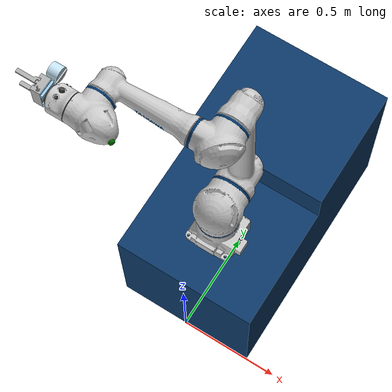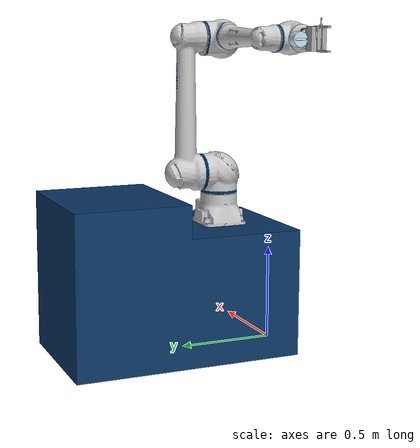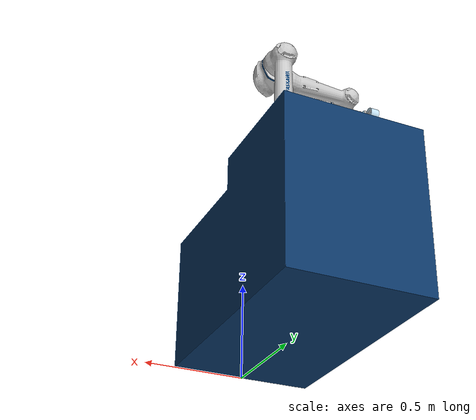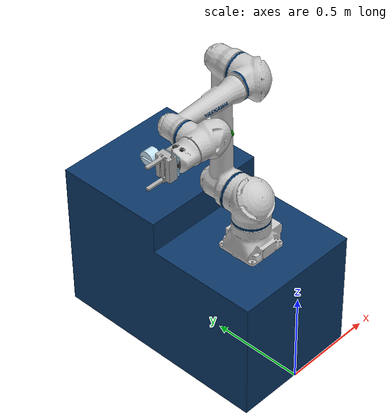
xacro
<?xml version="1.0" encoding="utf-8"?>
<robot xmlns:xacro="https://ros.org/wiki/xacro" name="hc10_with_hand">
 <xacro:include filename="$(find motoman_hc10_support)/urdf/hc10dt_b10.xacro"/>

 <xacro:include filename="$(find hc10_with_hand)/urdf/agv.urdf" />
<xacro:include filename="$(find hc10_with_hand)/urdf/end_effector_no_actuation.urdf"/>
<xacro:include filename="$(find hc10_with_hand)/urdf/camera.urdf" />

<joint name="$agv_arm_joint" type="fixed">
      <parent link="arm_position"/>
      <child link="base_link"/>
      <origin xyz="0 0 0" rpy="0 0 ${-pi/2}"/>
</joint>

<joint name="$hand_tool_joint" type="fixed">
      <parent link="tool0"/>
      <child link="arm_to_hand"/>
      <origin xyz="0 0 0" rpy="0 0 ${pi}"/>
</joint>

<joint name="$camera_joint" type="fixed">
      <parent link="hand_to_camera"/>
      <child link="camera_to_hand"/>
      <origin xyz="0 0 0" rpy="0 0 ${-pi/2}"/>

</joint>

</robot>

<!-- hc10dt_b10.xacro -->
<robot name="motoman_hc10dt_b10" xmlns:xacro="http://ros.org/wiki/xacro">
  <xacro:include filename="$(find motoman_hc10_support)/urdf/hc10dt_b10_macro.xacro" />
  <xacro:motoman_hc10dt_b10 prefix=""/>
</robot>

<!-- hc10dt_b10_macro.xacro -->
<robot xmlns:xacro="http://ros.org/wiki/xacro">
  <xacro:macro name="motoman_hc10dt_b10" params="prefix">
    <xacro:include filename="$(find motoman_resources)/urdf/common_materials.xacro"/>

    <!-- link list -->
    <link name="${prefix}base_link">
      <visual>
        <geometry>
          <mesh filename="package://motoman_hc10_support/meshes/hc10dt_b10/visual/base_link.dae"/>
        </geometry>
        <xacro:material_yaskawa_blue/>
      </visual>
      <collision>
        <geometry>
          <mesh filename="package://motoman_hc10_support/meshes/hc10dt_b10/collision/base_link.stl"/>
        </geometry>
      </collision>
    </link>
    <link name="${prefix}link_1_s">
      <visual>
        <geometry>
          <mesh filename="package://motoman_hc10_support/meshes/hc10dt_b10/visual/link_1_s.dae"/>
        </geometry>
        <xacro:material_yaskawa_blue/>
      </visual>
      <collision>
        <geometry>
          <mesh filename="package://motoman_hc10_support/meshes/hc10dt_b10/collision/link_1_s.stl"/>
        </geometry>
      </collision>
    </link>
    <link name="${prefix}link_2_l">
      <visual>
        <geometry>
          <mesh filename="package://motoman_hc10_support/meshes/hc10dt_b10/visual/link_2_l.dae"/>
        </geometry>
        <xacro:material_yaskawa_blue/>
      </visual>
      <collision>
        <geometry>
          <mesh filename="package://motoman_hc10_support/meshes/hc10dt_b10/collision/link_2_l.stl"/>
        </geometry>
      </collision>
    </link>
    <link name="${prefix}link_3_u">
      <visual>
        <geometry>
          <mesh filename="package://motoman_hc10_support/meshes/hc10dt_b10/visual/link_3_u.dae"/>
        </geometry>
        <xacro:material_yaskawa_blue/>
      </visual>
      <collision>
        <geometry>
          <mesh filename="package://motoman_hc10_support/meshes/hc10dt_b10/collision/link_3_u.stl"/>
        </geometry>
      </collision>
    </link>
    <link name="${prefix}link_4_r">
      <visual>
        <geometry>
          <mesh filename="package://motoman_hc10_support/meshes/hc10dt_b10/visual/link_4_r.dae"/>
        </geometry>
        <xacro:material_yaskawa_blue/>
      </visual>
      <collision>
        <geometry>
          <mesh filename="package://motoman_hc10_support/meshes/hc10dt_b10/collision/link_4_r.stl"/>
        </geometry>
      </collision>
    </link>
    <link name="${prefix}link_5_b">
      <visual>
        <geometry>
          <mesh filename="package://motoman_hc10_support/meshes/hc10dt_b10/visual/link_5_b.dae"/>
        </geometry>
        <xacro:material_yaskawa_blue/>
      </visual>
      <collision>
        <geometry>
          <mesh filename="package://motoman_hc10_support/meshes/hc10dt_b10/collision/link_5_b.stl"/>
        </geometry>
      </collision>
    </link>
    <link name="${prefix}link_6_t">
      <visual>
        <geometry>
          <mesh filename="package://motoman_hc10_support/meshes/hc10dt_b10/visual/link_6_t.dae"/>
        </geometry>
        <xacro:material_yaskawa_blue/>
      </visual>
      <collision>
        <geometry>
          <mesh filename="package://motoman_hc10_support/meshes/hc10dt_b10/collision/link_6_t.stl"/>
       </geometry>
      </collision>
    </link>
    <!-- end of link list -->

    <!-- joint list -->
    <joint name="${prefix}joint_1_s" type="revolute">
      <parent link="${prefix}base_link"/>
      <child link="${prefix}link_1_s"/>
      <origin xyz="0 0 0.275" rpy="0 0 0" />
      <axis xyz="0 0 1" />
      <limit lower="${radians(-180)}" upper="${radians(180)}" effort="368.48" velocity="${radians(130)}"/>
    </joint>
    <joint name="${prefix}joint_2_l" type="revolute">
      <parent link="${prefix}link_1_s"/>
      <child link="${prefix}link_2_l"/>
      <origin xyz="0 0 0" rpy="0 0 0" />
      <axis xyz="0 1 0" />
      <limit lower="${radians(-180)}" upper="${radians(180)}" effort="414.54" velocity="${radians(130)}"/>
    </joint>
    <joint name="${prefix}joint_3_u" type="revolute">
      <parent link="${prefix}link_2_l"/>
      <child link="${prefix}link_3_u"/>
      <origin xyz="0 0 0.700" rpy="0 0 0" />
      <axis xyz="0 -1 0" />
      <limit lower="${radians(-95)}" upper="${radians(265)}" effort="158.76" velocity="${radians(180)}"/>
    </joint>
    <joint name="${prefix}joint_4_r" type="revolute">
      <parent link="${prefix}link_3_u"/>
      <child link="${prefix}link_4_r"/>
      <origin xyz="0.500 0 0" rpy="0 0 0" />
      <axis xyz="-1 0 0" />
      <limit lower="${radians(-180)}" upper="${radians(180)}" effort="41.16" velocity="${radians(180)}"/>
    </joint>
    <joint name="${prefix}joint_5_b" type="revolute">
      <parent link="${prefix}link_4_r"/>
      <child link="${prefix}link_5_b"/>
      <origin xyz="0 0.162 0" rpy="0 0 0" />
      <axis xyz="0 -1 0" />
      <limit lower="${radians(-180)}" upper="${radians(180)}" effort="33.32" velocity="${radians(250)}"/>
    </joint>
    <joint name="${prefix}joint_6_t" type="revolute">
      <parent link="${prefix}link_5_b"/>
      <child link="${prefix}link_6_t"/>
      <origin xyz="0 0 0" rpy="0 0 0" />
      <axis xyz="-1 0 0" />
      <limit lower="${radians(-180)}" upper="${radians(180)}" effort="31.36" velocity="${radians(250)}"/>
    </joint>
    <!-- end of joint list -->

    <!-- ROS-Industrial 'flange' frame: attachment point for EEF models -->
    <link name="${prefix}flange"/>
    <joint name="${prefix}joint_6_t-flange" type="fixed">
      <origin xyz="0.170 0 0" rpy="0 0 0"/>
      <parent link="${prefix}link_6_t"/>
      <child link="${prefix}flange"/>
    </joint>

    <!-- ROS-Industrial 'tool0' frame: all-zeros tool frame -->
    <link name="${prefix}tool0"/>
    <joint name="${prefix}flange-tool0" type="fixed">
      <origin xyz="0 0 0" rpy="${radians(180)} ${radians(-90)} 0"/>
      <parent link="${prefix}flange"/>
      <child link="${prefix}tool0"/>
    </joint>

    <!-- ROS base_link to Robot Manufacturer World Coordinates transform -->
    <link name="${prefix}base" />
    <joint name="${prefix}base_link-base" type="fixed">
      <origin xyz="0 0 0.275" rpy="0 0 0"/>
      <parent link="${prefix}base_link"/>
      <child link="${prefix}base"/>
    </joint>
  </xacro:macro>
</robot>

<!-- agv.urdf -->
<robot name="agv">
<link name="part_1">
<visual>
<origin xyz="-0.35000000000000003331 0 0" rpy="0 -0 0" />
<geometry>
<mesh filename="package://hc10_with_hand/meshes/agv2/part_1.stl"/>
</geometry>
<material name="part_1_material">
<color rgba="0.043137254901960783715 0.21568627450980393245 0.40392156862745098866 1.0"/>
</material>
</visual>
<collision>
<origin xyz="-0.35000000000000003331 0 0" rpy="0 -0 0" />
<geometry>
<mesh filename="package://hc10_with_hand/meshes/agv2/part_1.stl"/>
</geometry>
</collision>
<inertial>
<origin xyz="-5.5511151231257827021e-17 0.63400000000000000799 0.37981666666666674681" rpy="0 0 0"/>
<mass value="4945.500000000001819" />
<inertia ixx="837.31419627625041358" ixy="1.0274208650518092216e-13"  ixz="1.4222477333000753134e-14" iyy="451.51244427625027811" iyz="-62.245216950000028078" izz="789.68425200000012865" />
</inertial>
</link>

<link name="arm_position">
<inertial>
<origin xyz="0 0 0" rpy="0 0 0" />
<mass value="1e-9" />
<inertia ixx="0" ixy="0" ixz="0" iyy="0" iyz="0" izz="0" />
</inertial>
</link>
<joint name="arm_position_frame" type="fixed">
<origin xyz="-1.6656406986375213093e-16 0.29999999999999982236 0.66500000000000036859" rpy="0 -0 -1.570796326794896558" />
<parent link="part_1" />
<child link="arm_position" />
<axis xyz="0 0 0"/>
</joint>

</robot>

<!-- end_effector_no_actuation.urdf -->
<robot name="onshape">
<link name="ffld_0850ncn30_lksr00_0__6">
<visual>
<origin xyz="0.057499581136592189945 0.0002219151046475575928 0.012999999465240053009" rpy="1.5707963197624172924 -9.3043403012065366432e-09 -3.1383258088491423621" />
<geometry>
<mesh filename="package://hc10_with_hand/meshes/end_effector/ffld_0850ncn30_lksr00_0__6.stl"/>
</geometry>
<material name="ffld_0850ncn30_lksr00_0__6_material">
<color rgba="0.68627450980392157298 0.68627450980392157298 0.68627450980392157298 1.0"/>
</material>
</visual>
<collision>
<origin xyz="0.057499581136592189945 0.0002219151046475575928 0.012999999465240053009" rpy="1.5707963197624172924 -9.3043403012065366432e-09 -3.1383258088491423621" />
<geometry>
<mesh filename="package://hc10_with_hand/meshes/end_effector/ffld_0850ncn30_lksr00_0__6.stl"/>
</geometry>
</collision>
<visual>
<origin xyz="0.05749958580022360155 0.00022191160362493300706 0.51299999946524066363" rpy="1.5707963197624170704 -9.3043400791619201376e-09 -3.138325808849141918" />
<geometry>
<mesh filename="package://hc10_with_hand/meshes/end_effector/support_end_effector.stl"/>
</geometry>
<material name="support_end_effector_material">
<color rgba="0.61568627450980395466 0.81176470588235294379 0.92941176470588238168 1.0"/>
</material>
</visual>
<collision>
<origin xyz="0.05749958580022360155 0.00022191160362493300706 0.51299999946524066363" rpy="1.5707963197624170704 -9.3043400791619201376e-09 -3.138325808849141918" />
<geometry>
<mesh filename="package://hc10_with_hand/meshes/end_effector/support_end_effector.stl"/>
</geometry>
</collision>
<inertial>
<origin xyz="-0.00017126631209801696865 -0.00032653912656861961089 0.030493844274670250938" rpy="0 0 0"/>
<mass value="3.4288288466821317257" />
<inertia ixx="0.0026643899238821475151" ixy="1.9310818192341067736e-05"  ixz="-1.8863578809773853332e-06" iyy="0.0046541737804580655263" iyz="-2.722204356959638443e-05" izz="0.0057254196930952875808" />
</inertial>
</link>

<link name="center_finger">
<inertial>
<origin xyz="0 0 0" rpy="0 0 0" />
<mass value="1e-9" />
<inertia ixx="0" ixy="0" ixz="0" iyy="0" iyz="0" izz="0" />
</inertial>
</link>
<joint name="center_finger_frame" type="fixed">
<origin xyz="-1.1077846807888816674e-07 3.4070920897401199773e-05 0.14800000000023966207" rpy="9.3043391731287407411e-09 -7.0324789191894066792e-09 1.574063171535547534" />
<parent link="ffld_0850ncn30_lksr00_0__6" />
<child link="center_finger" />
<axis xyz="0 0 0"/>
</joint>

<link name="end_effector_center">
<inertial>
<origin xyz="0 0 0" rpy="0 0 0" />
<mass value="1e-9" />
<inertia ixx="0" ixy="0" ixz="0" iyy="0" iyz="0" izz="0" />
</inertial>
</link>
<joint name="end_effector_center_frame" type="fixed">
<origin xyz="1.2125441276045201278e-10 -9.1026602921928656542e-11 0.012999999999999997669" rpy="9.3043401069174907901e-09 -7.0324793788390369411e-09 1.5740631715355455356" />
<parent link="ffld_0850ncn30_lksr00_0__6" />
<child link="end_effector_center" />
<axis xyz="0 0 0"/>
</joint>

<link name="arm_to_hand">
<inertial>
<origin xyz="0 0 0" rpy="0 0 0" />
<mass value="1e-9" />
<inertia ixx="0" ixy="0" ixz="0" iyy="0" iyz="0" izz="0" />
</inertial>
</link>
<joint name="arm_to_hand_frame" type="fixed">
<origin xyz="0 0 0" rpy="7.0324800430257777421e-09 9.3043403012065234083e-09 0.003266844740651022802" />
<parent link="arm_to_hand" />
<child link="ffld_0850ncn30_lksr00_0__6" />
<axis xyz="0 0 0"/>
</joint>

<link name="hand_to_camera">
<inertial>
<origin xyz="0 0 0" rpy="0 0 0" />
<mass value="1e-9" />
<inertia ixx="0" ixy="0" ixz="0" iyy="0" iyz="0" izz="0" />
</inertial>
</link>
<joint name="hand_to_camera_frame" type="fixed">
<origin xyz="-0.0073555144854190873671 -0.044240193231909627491 0.002999999758834949893" rpy="7.0324804106860020408e-09 9.3043403012065366432e-09 0.0032668447406510223684" />
<parent link="ffld_0850ncn30_lksr00_0__6" />
<child link="hand_to_camera" />
<axis xyz="0 0 0"/>
</joint>

<link name="ffld_0850ncn30_lksr00_0__3">
<visual>
<origin xyz="-0.013499999999999998113 -0.012699999999999997749 0.009799999999999940703" rpy="1.570796326794896558 1.570796326794896336 0" />
<geometry>
<mesh filename="package://hc10_with_hand/meshes/end_effector/ffld_0850ncn30_lksr00_0__3.stl"/>
</geometry>
<material name="ffld_0850ncn30_lksr00_0__3_material">
<color rgba="0.68627450980392157298 0.68627450980392157298 0.68627450980392157298 1.0"/>
</material>
</visual>
<collision>
<origin xyz="-0.013499999999999998113 -0.012699999999999997749 0.009799999999999940703" rpy="1.570796326794896558 1.570796326794896336 0" />
<geometry>
<mesh filename="package://hc10_with_hand/meshes/end_effector/ffld_0850ncn30_lksr00_0__3.stl"/>
</geometry>
</collision>
<inertial>
<origin xyz="0.026010155325234741996 -0.0047355803699542942803 -0.0032141138333249830161" rpy="0 0 0"/>
<mass value="0.19285564776873392878" />
<inertia ixx="5.5202859436152247683e-05" ixy="-2.9112780924458249069e-05"  ixz="-5.23746968336353535e-05" iyy="0.00024511850474100843611" iyz="-1.2232725957805765321e-05" izz="0.00021268038410786007817" />
</inertial>
</link>

<joint name="fing1" type="fixed">
<origin xyz="-0.049999844811295074409 -0.0001292703954122835508 0.058000000465456696963" rpy="0.0032668447406510748438 -1.5707963151318564687 0" />
<parent link="ffld_0850ncn30_lksr00_0__6" />
<child link="ffld_0850ncn30_lksr00_0__3" />
<axis xyz="0 0 1"/>
<limit effort="1" velocity="20" lower="0" upper="0.050000000000000002776"/>
<joint_properties friction="0.0"/>
</joint>

<link name="ffld_0850ncn30_lksr00_0__3_2">
<visual>
<origin xyz="-0.013499999999999991174 -0.012699999999999999484 0.009799999999999940703" rpy="1.570796326794896558 1.570796326794896336 0" />
<geometry>
<mesh filename="package://hc10_with_hand/meshes/end_effector/ffld_0850ncn30_lksr00_0__3.stl"/>
</geometry>
<material name="ffld_0850ncn30_lksr00_0__3_material">
<color rgba="0.68627450980392157298 0.68627450980392157298 0.68627450980392157298 1.0"/>
</material>
</visual>
<collision>
<origin xyz="-0.013499999999999991174 -0.012699999999999999484 0.009799999999999940703" rpy="1.570796326794896558 1.570796326794896336 0" />
<geometry>
<mesh filename="package://hc10_with_hand/meshes/end_effector/ffld_0850ncn30_lksr00_0__3.stl"/>
</geometry>
</collision>
<inertial>
<origin xyz="0.026010155325234748935 -0.004735580369954296015 -0.0032141138333249830161" rpy="0 0 0"/>
<mass value="0.19285564776873392878" />
<inertia ixx="5.5202859436152247683e-05" ixy="-2.9112780924458249069e-05"  ixz="-5.23746968336353535e-05" iyy="0.00024511850474100843611" iyz="-1.2232725957805765321e-05" izz="0.00021268038410786007817" />
</inertial>
</link>

<joint name="fing2" type="fixed">
<origin xyz="0.049999621575451499988 0.0001974134975754153476 0.057999999535022675468" rpy="-3.1383258088491423621 -1.5707963151318573569 0" />
<parent link="ffld_0850ncn30_lksr00_0__6" />
<child link="ffld_0850ncn30_lksr00_0__3_2" />
<axis xyz="0 0 1"/>
<limit effort="1" velocity="20" lower="0" upper="0.050000000000000002776"/>
<joint_properties friction="0.0"/>
</joint>

</robot>

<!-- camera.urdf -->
<robot name="camera">
<link name="camera_sup2">
<visual>
<origin xyz="-0.044250000000000101752 0.064999999999999655276 0.51000000000000034195" rpy="1.570796326794896558 6.6613381477509234653e-16 -1.570796326794896558" />
<geometry>
<mesh filename="package://hc10_with_hand/meshes/camera/camera_sup2.stl"/>
</geometry>
<material name="camera_sup2_material">
<color rgba="0.91764705882352937127 0.91764705882352937127 0.91764705882352937127 1.0"/>
</material>
</visual>
<collision>
<origin xyz="-0.044250000000000101752 0.064999999999999655276 0.51000000000000034195" rpy="1.570796326794896558 6.6613381477509234653e-16 -1.570796326794896558" />
<geometry>
<mesh filename="package://hc10_with_hand/meshes/camera/camera_sup2.stl"/>
</geometry>
</collision>
<visual>
<origin xyz="-0.045084453531127645365 0.064999999999999655276 0.51000000000000045297" rpy="1.570796326794896558 6.6613381477509234653e-16 -1.570796326794896558" />
<geometry>
<mesh filename="package://hc10_with_hand/meshes/camera/camera_link.stl"/>
</geometry>
<material name="camera_link_material">
<color rgba="0.76862745098039220171 0.88627450980392152857 0.95294117647058818044 1.0"/>
</material>
</visual>
<collision>
<origin xyz="-0.045084453531127645365 0.064999999999999655276 0.51000000000000045297" rpy="1.570796326794896558 6.6613381477509234653e-16 -1.570796326794896558" />
<geometry>
<mesh filename="package://hc10_with_hand/meshes/camera/camera_link.stl"/>
</geometry>
</collision>
<inertial>
<origin xyz="0.04949093212775205336 0.0074999999999999372724 0.029126341361751767467" rpy="0 0 0"/>
<mass value="0.44949998079333491896" />
<inertia ixx="0.00025885935812457525193" ixy="-9.4509154105318211273e-21"  ixz="-6.3216991564398030949e-06" iyy="0.00024727718204468863376" iyz="-3.5333537328324862512e-20" izz="0.00030425868802670864464" />
</inertial>
</link>

<link name="camera_to_hand">
<inertial>
<origin xyz="0 0 0" rpy="0 0 0" />
<mass value="1e-9" />
<inertia ixx="0" ixy="0" ixz="0" iyy="0" iyz="0" izz="0" />
</inertial>
</link>
<joint name="camera_to_hand_frame" type="fixed">
<origin xyz="1.2986865570217543499e-17 -6.9676108198468406655e-17 -3.3306690738754696213e-16" rpy="6.6613381477509185349e-16 5.6699377562760083384e-31 1.3877787807814422859e-17" />
<parent link="camera_to_hand" />
<child link="camera_sup2" />
<axis xyz="0 0 0"/>
</joint>

<link name="camera_link_view">
<inertial>
<origin xyz="0 0 0" rpy="0 0 0" />
<mass value="1e-9" />
<inertia ixx="0" ixy="0" ixz="0" iyy="0" iyz="0" izz="0" />
</inertial>
</link>
<joint name="camera_link_view_frame" type="fixed">
<origin xyz="0.050000000000000134615 0.0074999999999999103842 0.049999999999999732159" rpy="-5.6699377562760144691e-31 6.6613381477509234653e-16 -1.570796326794896558" />
<parent link="camera_sup2" />
<child link="camera_link_view" />
<axis xyz="0 0 0"/>
</joint>

<gazebo reference="camera_sup2">
    <material>Gazebo/Red</material>
    <sensor name="camera" type="camera">
    <pose> 0 0 0 0 0 0 </pose>
    <visualize>true</visualize>
    <update_rate>10</update_rate>
    	<camera>
    		<horizontal_fov>1.42419</horizontal_fov>
    		<image>
        	<format>R8G8B8</format>
        	<width>1920</width>
        	<height>1080</height>
    		</image>
    		<clip>
        	<near>0.05</near>
        	<far>8.0</far>
    		</clip>
    	</camera>
    <plugin name="camera_controller" filename="libgazebo_ros_camera.so">
    <frame_name>camera_link_view</frame_name>
    </plugin>
</sensor>
</gazebo>

</robot>
